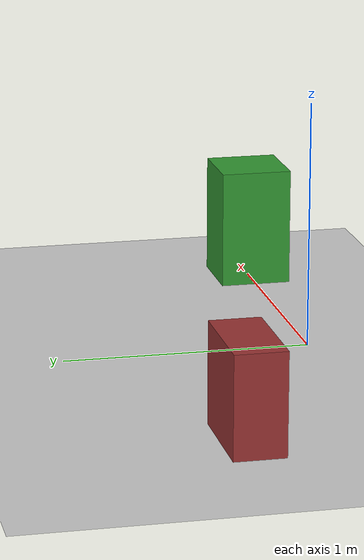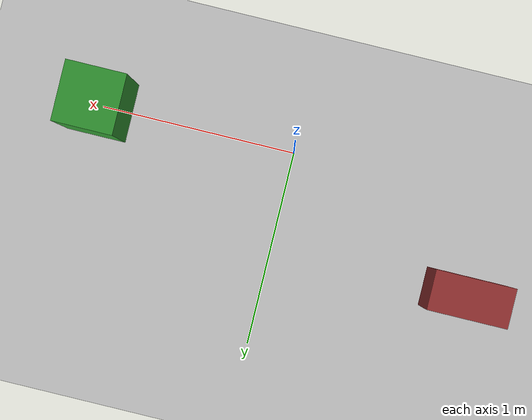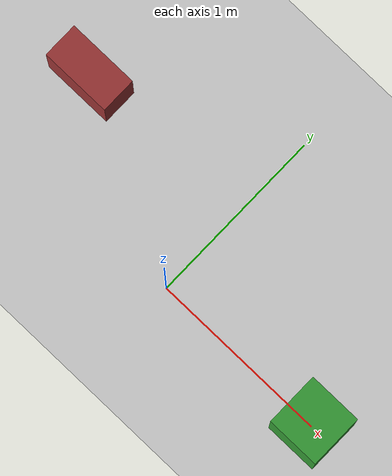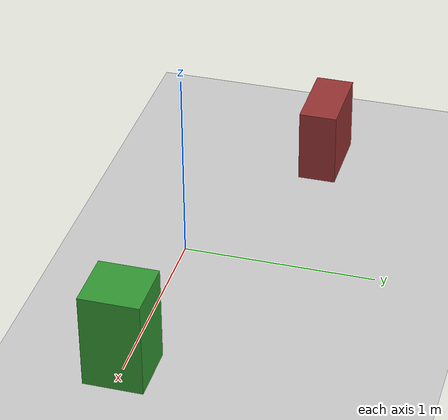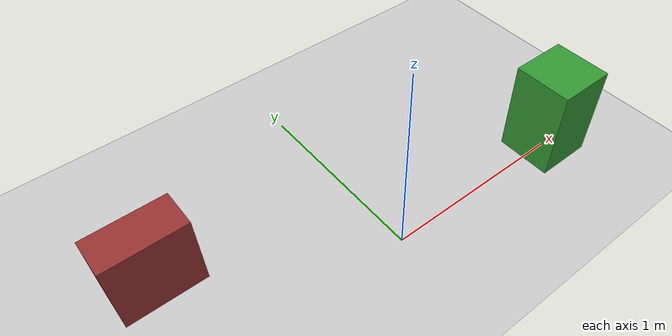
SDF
<?xml version="1.0" ?>
<!--
  Gazebo Fortress world for the ceiling-robot workcell sim.
  Kept minimal: physics + lighting only.
  The robot is spawned by the launch file, not declared here.
-->
<sdf version="1.8">
  <world name="workcell">

    <physics name="1ms" type="ignored">
      <max_step_size>0.001</max_step_size>
      <real_time_factor>1.0</real_time_factor>
    </physics>

    <!-- Required Fortress systems -->
    <plugin filename="gz-sim-physics-system"
            name="gz::sim::systems::Physics"/>
    <plugin filename="gz-sim-sensors-system"
            name="gz::sim::systems::Sensors">
      <render_engine>ogre2</render_engine>
    </plugin>
    <plugin filename="gz-sim-scene-broadcaster-system"
            name="gz::sim::systems::SceneBroadcaster"/>
    <plugin filename="gz-sim-user-commands-system"
            name="gz::sim::systems::UserCommands"/>

    <!-- Sun light -->
    <light type="directional" name="sun">
      <cast_shadows>true</cast_shadows>
      <pose>0 0 10 0 0 0</pose>
      <diffuse>0.8 0.8 0.8 1</diffuse>
      <specular>0.2 0.2 0.2 1</specular>
      <direction>-0.5 0.1 -0.9</direction>
    </light>

    <!-- Floor plane -->
    <model name="ground_plane">
      <static>true</static>
      <link name="link">
        <collision name="collision">
          <geometry><plane><normal>0 0 1</normal><size>20 20</size></plane></geometry>
        </collision>
        <visual name="visual">
          <geometry><plane><normal>0 0 1</normal><size>20 20</size></plane></geometry>
          <material>
            <ambient>0.8 0.8 0.8 1</ambient>
            <diffuse>0.8 0.8 0.8 1</diffuse>
          </material>
        </visual>
      </link>
    </model>

    <model name="validation_box_1">
      <static>true</static>
      <pose>1.0 0.0 0.25 0 0 0</pose>
      <link name="link">
        <collision name="collision">
          <geometry><box><size>0.3 0.3 0.5</size></box></geometry>
        </collision>
        <visual name="visual">
          <geometry><box><size>0.3 0.3 0.5</size></box></geometry>
          <material><ambient>0.2 0.6 0.2 1</ambient><diffuse>0.2 0.6 0.2 1</diffuse></material>
        </visual>
      </link>
    </model>

    <model name="validation_box_2">
      <static>true</static>
      <pose>-1.0 0.5 0.2 0 0 0</pose>
      <link name="link">
        <collision name="collision">
          <geometry><box><size>0.4 0.2 0.4</size></box></geometry>
        </collision>
        <visual name="visual">
          <geometry><box><size>0.4 0.2 0.4</size></box></geometry>
          <material><ambient>0.6 0.2 0.2 1</ambient><diffuse>0.6 0.2 0.2 1</diffuse></material>
        </visual>
      </link>
    </model>

  </world>
</sdf>
